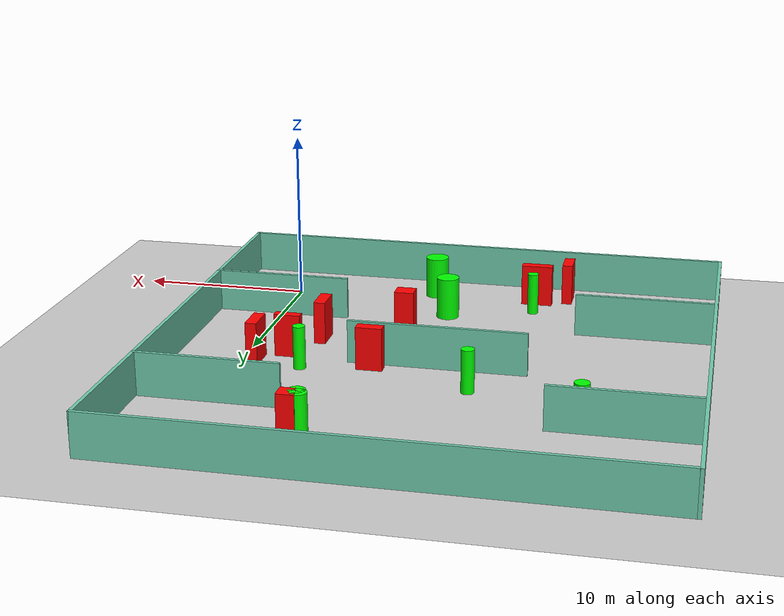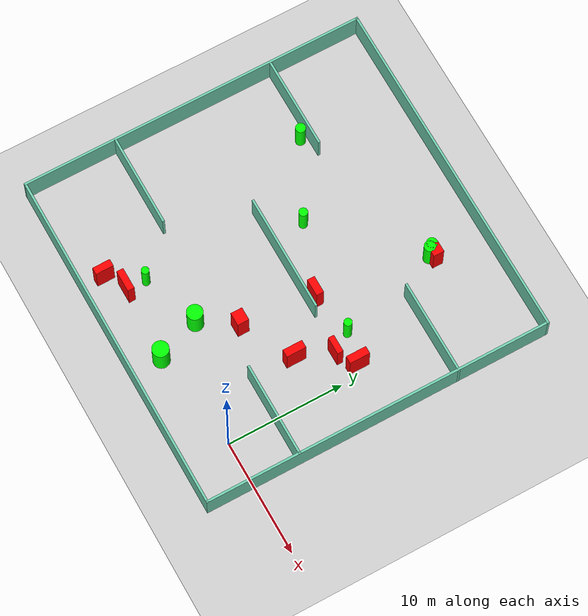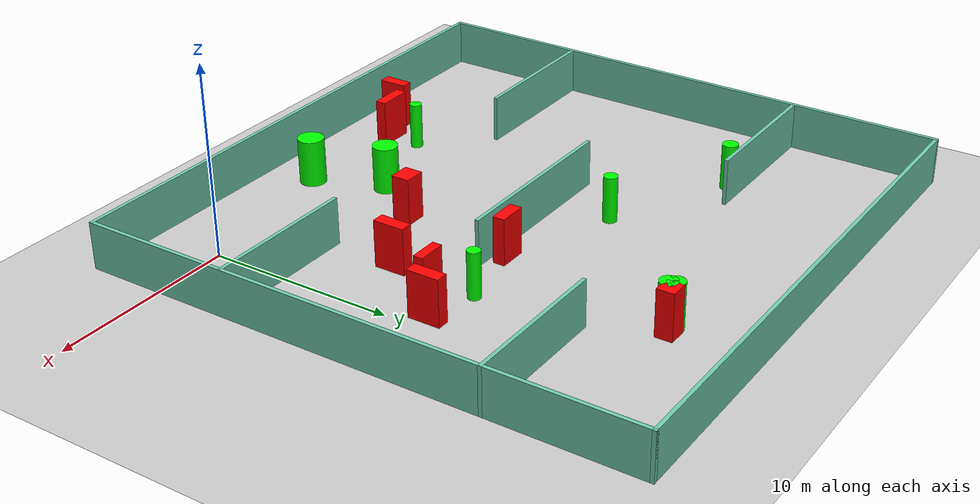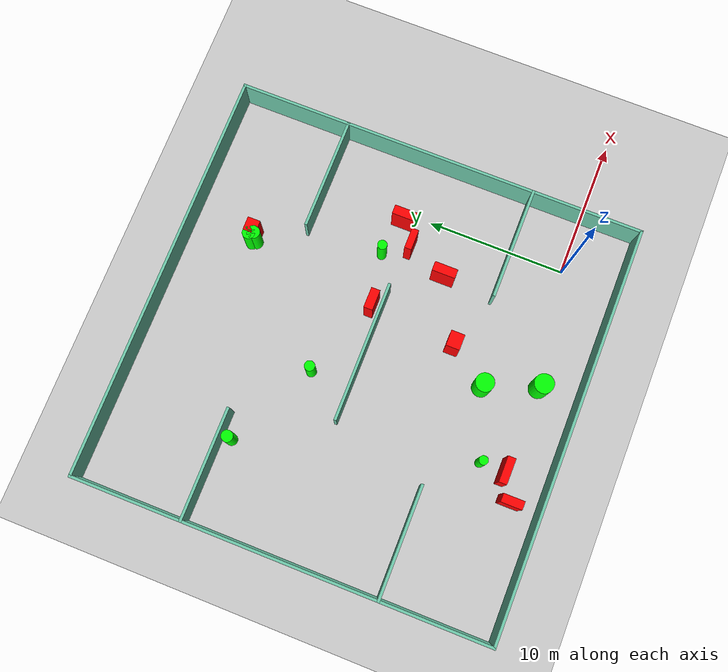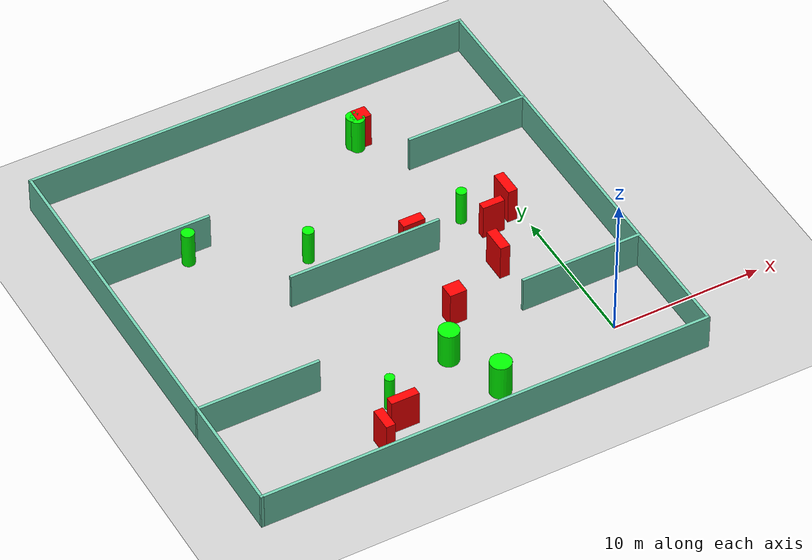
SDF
<sdf version="1.7">
 <world name="default">
  <light name="sun" type="directional">
   <pose>0 0 10 0 -0 0</pose>
   <diffuse>0.8 0.8 0.8 1</diffuse>
   <specular>0.2 0.2 0.2 1</specular>
   <attenuation>
    <range>1000</range>
    <constant>0.9</constant>
    <linear>0.01</linear>
    <quadratic>0.001</quadratic>
   </attenuation>
   <direction>-0.5 0.1 -0.9</direction>
   <spot><inner_angle>0</inner_angle><outer_angle>0</outer_angle><falloff>0</falloff></spot>
  </light>
  <model name="ground_plane">
   <static>1</static>
   <link name="link">
    <collision name="collision">
     <geometry><plane><normal>0 0 1</normal><size>100 100</size></plane></geometry>
     <surface>
      <contact><collide_bitmask>65535</collide_bitmask></contact>
      <friction><ode><mu>100</mu><mu2>50</mu2></ode></friction>
     </surface>
    </collision>
    <visual name="visual">
     <cast_shadows>0</cast_shadows>
     <geometry><plane><normal>0 0 1</normal><size>100 100</size></plane></geometry>
     <material>
      <script><uri>file://media/materials/scripts/gazebo.material</uri><name>Gazebo/Grey</name></script>
     </material>
    </visual>
   </link>
  </model>
  <gravity>0 0 -9.8</gravity>
  <magnetic_field>6e-06 2.3e-05 -4.2e-05</magnetic_field>
  <atmosphere type="adiabatic"/>
  <physics type="ode">
   <max_step_size>0.001</max_step_size>
   <real_time_factor>1</real_time_factor>
   <real_time_update_rate>1000</real_time_update_rate>
  </physics>
  <scene><ambient>0.4 0.4 0.4 1</ambient><background>0.7 0.7 0.7 1</background><shadows>1</shadows></scene>
  <spherical_coordinates>
   <surface_model>EARTH_WGS84</surface_model>
   <latitude_deg>0</latitude_deg>
   <longitude_deg>0</longitude_deg>
   <elevation>0</elevation>
   <heading_deg>0</heading_deg>
  </spherical_coordinates>
  <model name="my_base_walls">
   <link name="Wall_10">
    <collision name="Wall_10_Collision">
     <geometry><box><size>8.2 0.2 2.5</size></box></geometry>
     <pose>0 0 1.25 0 -0 0</pose>
    </collision>
    <visual name="Wall_10_Visual">
     <pose>0 0 1.25 0 -0 0</pose>
     <geometry><box><size>8.2 0.2 2.5</size></box></geometry>
     <material>
      <script><uri>file://media/materials/scripts/gazebo.material</uri><name>Gazebo/Grey</name></script>
      <ambient>0.435294 0.796078 0.67451 1</ambient>
     </material>
     <meta><layer>0</layer></meta>
    </visual>
    <pose>-11 -7 0 0 -0 0</pose>
   </link>
   <link name="Wall_12">
    <collision name="Wall_12_Collision">
     <geometry><box><size>8.2 0.2 2.5</size></box></geometry>
     <pose>0 0 1.25 0 -0 0</pose>
    </collision>
    <visual name="Wall_12_Visual">
     <pose>0 0 1.25 0 -0 0</pose>
     <geometry><box><size>8.2 0.2 2.5</size></box></geometry>
     <material>
      <script><uri>file://media/materials/scripts/gazebo.material</uri><name>Gazebo/Grey</name></script>
      <ambient>0.435294 0.796078 0.67451 1</ambient>
     </material>
     <meta><layer>0</layer></meta>
    </visual>
    <pose>-11 7 0 0 -0 0</pose>
   </link>
   <link name="Wall_14">
    <collision name="Wall_14_Collision">
     <geometry><box><size>8.2 0.2 2.5</size></box></geometry>
     <pose>0 0 1.25 0 -0 0</pose>
    </collision>
    <visual name="Wall_14_Visual">
     <pose>0 0 1.25 0 -0 0</pose>
     <geometry><box><size>8.2 0.2 2.5</size></box></geometry>
     <material>
      <script><uri>file://media/materials/scripts/gazebo.material</uri><name>Gazebo/Grey</name></script>
      <ambient>0.435294 0.796078 0.67451 1</ambient>
     </material>
     <meta><layer>0</layer></meta>
    </visual>
    <pose>11 7 0 0 -0 3.14159</pose>
   </link>
   <link name="Wall_16">
    <collision name="Wall_16_Collision">
     <geometry><box><size>10.2 0.2 2.5</size></box></geometry>
     <pose>0 0 1.25 0 -0 0</pose>
    </collision>
    <visual name="Wall_16_Visual">
     <pose>0 0 1.25 0 -0 0</pose>
     <geometry><box><size>10.2 0.2 2.5</size></box></geometry>
     <material>
      <script><uri>file://media/materials/scripts/gazebo.material</uri><name>Gazebo/Grey</name></script>
      <ambient>0.435294 0.796078 0.67451 1</ambient>
     </material>
     <meta><layer>0</layer></meta>
    </visual>
    <pose>0 0 0 0 -0 3.14159</pose>
   </link>
   <link name="Wall_2">
    <collision name="Wall_2_Collision">
     <geometry><box><size>30.2 0.2 2.5</size></box></geometry>
     <pose>0 0 1.25 0 -0 0</pose>
    </collision>
    <visual name="Wall_2_Visual">
     <pose>0 0 1.25 0 -0 0</pose>
     <geometry><box><size>30.2 0.2 2.5</size></box></geometry>
     <material>
      <script><uri>file://media/materials/scripts/gazebo.material</uri><name>Gazebo/Grey</name></script>
      <ambient>0.435294 0.796078 0.67451 1</ambient>
     </material>
     <meta><layer>0</layer></meta>
    </visual>
    <pose>0 -15 0 0 -0 3.14159</pose>
   </link>
   <link name="Wall_3">
    <collision name="Wall_3_Collision">
     <geometry><box><size>30.2 0.2 2.5</size></box></geometry>
     <pose>0 0 1.25 0 -0 0</pose>
    </collision>
    <visual name="Wall_3_Visual">
     <pose>0 0 1.25 0 -0 0</pose>
     <geometry><box><size>30.2 0.2 2.5</size></box></geometry>
     <material>
      <script><uri>file://media/materials/scripts/gazebo.material</uri><name>Gazebo/Grey</name></script>
      <ambient>0.435294 0.796078 0.67451 1</ambient>
     </material>
     <meta><layer>0</layer></meta>
    </visual>
    <pose>-15 0 0 0 -0 1.5708</pose>
   </link>
   <link name="Wall_4">
    <collision name="Wall_4_Collision">
     <geometry><box><size>30.2 0.2 2.5</size></box></geometry>
     <pose>0 0 1.25 0 -0 0</pose>
    </collision>
    <visual name="Wall_4_Visual">
     <pose>0 0 1.25 0 -0 0</pose>
     <geometry><box><size>30.2 0.2 2.5</size></box></geometry>
     <material>
      <script><uri>file://media/materials/scripts/gazebo.material</uri><name>Gazebo/Grey</name></script>
      <ambient>0.435294 0.796078 0.67451 1</ambient>
     </material>
     <meta><layer>0</layer></meta>
    </visual>
    <pose>0 15 0 0 -0 0</pose>
   </link>
   <link name="Wall_6">
    <collision name="Wall_6_Collision">
     <geometry><box><size>30.2 0.2 2.5</size></box></geometry>
     <pose>0 0 1.25 0 -0 0</pose>
    </collision>
    <visual name="Wall_6_Visual">
     <pose>0 0 1.25 0 -0 0</pose>
     <geometry><box><size>30.2 0.2 2.5</size></box></geometry>
     <material>
      <script><uri>file://media/materials/scripts/gazebo.material</uri><name>Gazebo/Grey</name></script>
      <ambient>0.435294 0.796078 0.67451 1</ambient>
     </material>
     <meta><layer>0</layer></meta>
    </visual>
    <pose>15 0 0 0 -0 1.5708</pose>
   </link>
   <link name="Wall_8">
    <collision name="Wall_8_Collision">
     <geometry><box><size>8.2 0.2 2.5</size></box></geometry>
     <pose>0 0 1.25 0 -0 0</pose>
    </collision>
    <visual name="Wall_8_Visual">
     <pose>0 0 1.25 0 -0 0</pose>
     <geometry><box><size>8.2 0.2 2.5</size></box></geometry>
     <material>
      <script><uri>file://media/materials/scripts/gazebo.material</uri><name>Gazebo/Grey</name></script>
      <ambient>0.435294 0.796078 0.67451 1</ambient>
     </material>
     <meta><layer>0</layer></meta>
    </visual>
    <pose>11 -7 0 0 -0 3.14159</pose>
   </link>
   <static>1</static>
   <pose>-11 11 0 0 -0 0</pose>
  </model>
  <model name="cylinder1">
   <static>1</static>
   <link name="link">
    <inertial>
     <mass>1</mass>
     <inertia><ixx>0.5</ixx><ixy>0</ixy><ixz>0</ixz><iyy>0.5</iyy><iyz>0</iyz><izz>1</izz></inertia>
    </inertial>
    <collision name="collision">
     <geometry><cylinder><radius>0.4744906262213804</radius><length>2.5</length></cylinder></geometry>
    </collision>
    <visual name="visual">
     <geometry><cylinder><radius>0.4744906262213804</radius><length>2.5</length></cylinder></geometry>
     <material>
      <ambient>0 1 0 1</ambient>
      <diffuse>0 1 0 1</diffuse>
      <specular>0.1 0.1 0.1 1</specular>
      <emissive>0 0 0 0</emissive>
     </material>
    </visual>
   </link>
   <pose>-5.939073608940134 21.207283273305126 1.25 0 0 0</pose>
  </model>
  <model name="cylinder2">
   <static>1</static>
   <link name="link">
    <inertial>
     <mass>1</mass>
     <inertia><ixx>0.5</ixx><ixy>0</ixy><ixz>0</ixz><iyy>0.5</iyy><iyz>0</iyz><izz>1</izz></inertia>
    </inertial>
    <collision name="collision">
     <geometry><cylinder><radius>0.3460966828207403</radius><length>2.5</length></cylinder></geometry>
    </collision>
    <visual name="visual">
     <geometry><cylinder><radius>0.3460966828207403</radius><length>2.5</length></cylinder></geometry>
     <material>
      <ambient>0 1 0 1</ambient>
      <diffuse>0 1 0 1</diffuse>
      <specular>0.1 0.1 0.1 1</specular>
      <emissive>0 0 0 0</emissive>
     </material>
    </visual>
   </link>
   <pose>-3.507474785795509 12.479169385448454 1.25 0 0 0</pose>
  </model>
  <model name="cylinder3">
   <static>1</static>
   <link name="link">
    <inertial>
     <mass>1</mass>
     <inertia><ixx>0.5</ixx><ixy>0</ixy><ixz>0</ixz><iyy>0.5</iyy><iyz>0</iyz><izz>1</izz></inertia>
    </inertial>
    <collision name="collision">
     <geometry><cylinder><radius>0.6720621996966054</radius><length>2.5</length></cylinder></geometry>
    </collision>
    <visual name="visual">
     <geometry><cylinder><radius>0.6720621996966054</radius><length>2.5</length></cylinder></geometry>
     <material>
      <ambient>0 1 0 1</ambient>
      <diffuse>0 1 0 1</diffuse>
      <specular>0.1 0.1 0.1 1</specular>
      <emissive>0 0 0 0</emissive>
     </material>
    </visual>
   </link>
   <pose>-9.98553467566095 2.498897330872069 1.25 0 0 0</pose>
  </model>
  <model name="cylinder4">
   <static>1</static>
   <link name="link">
    <inertial>
     <mass>1</mass>
     <inertia><ixx>0.5</ixx><ixy>0</ixy><ixz>0</ixz><iyy>0.5</iyy><iyz>0</iyz><izz>1</izz></inertia>
    </inertial>
    <collision name="collision">
     <geometry><cylinder><radius>0.3725260561895565</radius><length>2.5</length></cylinder></geometry>
    </collision>
    <visual name="visual">
     <geometry><cylinder><radius>0.3725260561895565</radius><length>2.5</length></cylinder></geometry>
     <material>
      <ambient>0 1 0 1</ambient>
      <diffuse>0 1 0 1</diffuse>
      <specular>0.1 0.1 0.1 1</specular>
      <emissive>0 0 0 0</emissive>
     </material>
    </visual>
   </link>
   <pose>-13.281459518818718 13.9735024224982 1.25 0 0 0</pose>
  </model>
  <model name="cylinder5">
   <static>1</static>
   <link name="link">
    <inertial>
     <mass>1</mass>
     <inertia><ixx>0.5</ixx><ixy>0</ixy><ixz>0</ixz><iyy>0.5</iyy><iyz>0</iyz><izz>1</izz></inertia>
    </inertial>
    <collision name="collision">
     <geometry><cylinder><radius>0.4604435248774539</radius><length>2.5</length></cylinder></geometry>
    </collision>
    <visual name="visual">
     <geometry><cylinder><radius>0.4604435248774539</radius><length>2.5</length></cylinder></geometry>
     <material>
      <ambient>0 1 0 1</ambient>
      <diffuse>0 1 0 1</diffuse>
      <specular>0.1 0.1 0.1 1</specular>
      <emissive>0 0 0 0</emissive>
     </material>
    </visual>
   </link>
   <pose>-6.10078737315002 21.488730929154897 1.25 0 0 0</pose>
  </model>
  <model name="cylinder6">
   <static>1</static>
   <link name="link">
    <inertial>
     <mass>1</mass>
     <inertia><ixx>0.5</ixx><ixy>0</ixy><ixz>0</ixz><iyy>0.5</iyy><iyz>0</iyz><izz>1</izz></inertia>
    </inertial>
    <collision name="collision">
     <geometry><cylinder><radius>0.4222232050062828</radius><length>2.5</length></cylinder></geometry>
    </collision>
    <visual name="visual">
     <geometry><cylinder><radius>0.4222232050062828</radius><length>2.5</length></cylinder></geometry>
     <material>
      <ambient>0 1 0 1</ambient>
      <diffuse>0 1 0 1</diffuse>
      <specular>0.1 0.1 0.1 1</specular>
      <emissive>0 0 0 0</emissive>
     </material>
    </visual>
   </link>
   <pose>-19.72747201859668 17.322666447963872 1.25 0 0 0</pose>
  </model>
  <model name="cylinder7">
   <static>1</static>
   <link name="link">
    <inertial>
     <mass>1</mass>
     <inertia><ixx>0.5</ixx><ixy>0</ixy><ixz>0</ixz><iyy>0.5</iyy><iyz>0</iyz><izz>1</izz></inertia>
    </inertial>
    <collision name="collision">
     <geometry><cylinder><radius>0.32588278201797866</radius><length>2.5</length></cylinder></geometry>
    </collision>
    <visual name="visual">
     <geometry><cylinder><radius>0.32588278201797866</radius><length>2.5</length></cylinder></geometry>
     <material>
      <ambient>0 1 0 1</ambient>
      <diffuse>0 1 0 1</diffuse>
      <specular>0.1 0.1 0.1 1</specular>
      <emissive>0 0 0 0</emissive>
     </material>
    </visual>
   </link>
   <pose>-14.950046387961027 0.7867892907428202 1.25 0 0 0</pose>
  </model>
  <model name="cylinder8">
   <static>1</static>
   <link name="link">
    <inertial>
     <mass>1</mass>
     <inertia><ixx>0.5</ixx><ixy>0</ixy><ixz>0</ixz><iyy>0.5</iyy><iyz>0</iyz><izz>1</izz></inertia>
    </inertial>
    <collision name="collision">
     <geometry><cylinder><radius>0.6984273916884473</radius><length>2.5</length></cylinder></geometry>
    </collision>
    <visual name="visual">
     <geometry><cylinder><radius>0.6984273916884473</radius><length>2.5</length></cylinder></geometry>
     <material>
      <ambient>0 1 0 1</ambient>
      <diffuse>0 1 0 1</diffuse>
      <specular>0.1 0.1 0.1 1</specular>
      <emissive>0 0 0 0</emissive>
     </material>
    </visual>
   </link>
   <pose>-8.594642379242181 -1.258012727808853 1.25 0 0 0</pose>
  </model>
  <model name="box1">
   <static>1</static>
   <link name="link">
    <inertial>
     <mass>1</mass>
     <inertia><ixx>0.083</ixx><ixy>0</ixy><ixz>0</ixz><iyy>0.083</iyy><iyz>0</iyz><izz>0.083</izz></inertia>
    </inertial>
    <collision name="collision">
     <geometry><box><size>1.5040425788543168 0.5100848483742837 2.5</size></box></geometry>
    </collision>
    <visual name="visual">
     <geometry><box><size>1.5040425788543168 0.5100848483742837 2.5</size></box></geometry>
     <material>
      <ambient>1 0 0 1</ambient>
      <diffuse>1 0 0 1</diffuse>
      <specular>0.1 0.1 0.1 1</specular>
      <emissive>0 0 0 0</emissive>
     </material>
    </visual>
    <sensor name="my_contact" type="contact">
     <contact><collision>box_collision</collision><topic>__default_topic__</topic></contact>
    </sensor>
   </link>
   <pose>-2.360439082118564 10.737976540657263 1.25 0 0 0</pose>
  </model>
  <model name="box2">
   <static>1</static>
   <link name="link">
    <inertial>
     <mass>1</mass>
     <inertia><ixx>0.083</ixx><ixy>0</ixy><ixz>0</ixz><iyy>0.083</iyy><iyz>0</iyz><izz>0.083</izz></inertia>
    </inertial>
    <collision name="collision">
     <geometry><box><size>1.1371237239685388 0.9961310465963609 2.5</size></box></geometry>
    </collision>
    <visual name="visual">
     <geometry><box><size>1.1371237239685388 0.9961310465963609 2.5</size></box></geometry>
     <material>
      <ambient>1 0 0 1</ambient>
      <diffuse>1 0 0 1</diffuse>
      <specular>0.1 0.1 0.1 1</specular>
      <emissive>0 0 0 0</emissive>
     </material>
    </visual>
    <sensor name="my_contact" type="contact">
     <contact><collision>box_collision</collision><topic>__default_topic__</topic></contact>
    </sensor>
   </link>
   <pose>-7.9823458095954685 5.3818038281412015 1.25 0 0 0</pose>
  </model>
  <model name="box3">
   <static>1</static>
   <link name="link">
    <inertial>
     <mass>1</mass>
     <inertia><ixx>0.083</ixx><ixy>0</ixy><ixz>0</ixz><iyy>0.083</iyy><iyz>0</iyz><izz>0.083</izz></inertia>
    </inertial>
    <collision name="collision">
     <geometry><box><size>0.6161786250753722 1.5295705475495918 2.5</size></box></geometry>
    </collision>
    <visual name="visual">
     <geometry><box><size>0.6161786250753722 1.5295705475495918 2.5</size></box></geometry>
     <material>
      <ambient>1 0 0 1</ambient>
      <diffuse>1 0 0 1</diffuse>
      <specular>0.1 0.1 0.1 1</specular>
      <emissive>0 0 0 0</emissive>
     </material>
    </visual>
    <sensor name="my_contact" type="contact">
     <contact><collision>box_collision</collision><topic>__default_topic__</topic></contact>
    </sensor>
   </link>
   <pose>-16.79791768620074 -1.9497215120189155 1.25 0 0 0</pose>
  </model>
  <model name="box4">
   <static>1</static>
   <link name="link">
    <inertial>
     <mass>1</mass>
     <inertia><ixx>0.083</ixx><ixy>0</ixy><ixz>0</ixz><iyy>0.083</iyy><iyz>0</iyz><izz>0.083</izz></inertia>
    </inertial>
    <collision name="collision">
     <geometry><box><size>1.8672343664405047 0.5763339071932116 2.5</size></box></geometry>
    </collision>
    <visual name="visual">
     <geometry><box><size>1.8672343664405047 0.5763339071932116 2.5</size></box></geometry>
     <material>
      <ambient>1 0 0 1</ambient>
      <diffuse>1 0 0 1</diffuse>
      <specular>0.1 0.1 0.1 1</specular>
      <emissive>0 0 0 0</emissive>
     </material>
    </visual>
    <sensor name="my_contact" type="contact">
     <contact><collision>box_collision</collision><topic>__default_topic__</topic></contact>
    </sensor>
   </link>
   <pose>-14.987966984584215 -0.918924847261509 1.25 0 0 0</pose>
  </model>
  <model name="box5">
   <static>1</static>
   <link name="link">
    <inertial>
     <mass>1</mass>
     <inertia><ixx>0.083</ixx><ixy>0</ixy><ixz>0</ixz><iyy>0.083</iyy><iyz>0</iyz><izz>0.083</izz></inertia>
    </inertial>
    <collision name="collision">
     <geometry><box><size>0.9828378930549837 0.9204725490914022 2.5</size></box></geometry>
    </collision>
    <visual name="visual">
     <geometry><box><size>0.9828378930549837 0.9204725490914022 2.5</size></box></geometry>
     <material>
      <ambient>1 0 0 1</ambient>
      <diffuse>1 0 0 1</diffuse>
      <specular>0.1 0.1 0.1 1</specular>
      <emissive>0 0 0 0</emissive>
     </material>
    </visual>
    <sensor name="my_contact" type="contact">
     <contact><collision>box_collision</collision><topic>__default_topic__</topic></contact>
    </sensor>
   </link>
   <pose>-5.531694465762508 21.502144860384885 1.25 0 0 0</pose>
  </model>
  <model name="box6">
   <static>1</static>
   <link name="link">
    <inertial>
     <mass>1</mass>
     <inertia><ixx>0.083</ixx><ixy>0</ixy><ixz>0</ixz><iyy>0.083</iyy><iyz>0</iyz><izz>0.083</izz></inertia>
    </inertial>
    <collision name="collision">
     <geometry><box><size>1.502999935717298 0.6442076430696623 2.5</size></box></geometry>
    </collision>
    <visual name="visual">
     <geometry><box><size>1.502999935717298 0.6442076430696623 2.5</size></box></geometry>
     <material>
      <ambient>1 0 0 1</ambient>
      <diffuse>1 0 0 1</diffuse>
      <specular>0.1 0.1 0.1 1</specular>
      <emissive>0 0 0 0</emissive>
     </material>
    </visual>
    <sensor name="my_contact" type="contact">
     <contact><collision>box_collision</collision><topic>__default_topic__</topic></contact>
    </sensor>
   </link>
   <pose>-7.364122815782249 11.750963324706776 1.25 0 0 0</pose>
  </model>
  <model name="box7">
   <static>1</static>
   <link name="link">
    <inertial>
     <mass>1</mass>
     <inertia><ixx>0.083</ixx><ixy>0</ixy><ixz>0</ixz><iyy>0.083</iyy><iyz>0</iyz><izz>0.083</izz></inertia>
    </inertial>
    <collision name="collision">
     <geometry><box><size>0.6676741349836028 1.6946946739846385 2.5</size></box></geometry>
    </collision>
    <visual name="visual">
     <geometry><box><size>0.6676741349836028 1.6946946739846385 2.5</size></box></geometry>
     <material>
      <ambient>1 0 0 1</ambient>
      <diffuse>1 0 0 1</diffuse>
      <specular>0.1 0.1 0.1 1</specular>
      <emissive>0 0 0 0</emissive>
     </material>
    </visual>
    <sensor name="my_contact" type="contact">
     <contact><collision>box_collision</collision><topic>__default_topic__</topic></contact>
    </sensor>
   </link>
   <pose>-3.60229726806638 7.786032992419194 1.25 0 0 0</pose>
  </model>
  <model name="box8">
   <static>1</static>
   <link name="link">
    <inertial>
     <mass>1</mass>
     <inertia><ixx>0.083</ixx><ixy>0</ixy><ixz>0</ixz><iyy>0.083</iyy><iyz>0</iyz><izz>0.083</izz></inertia>
    </inertial>
    <collision name="collision">
     <geometry><box><size>0.6541926305366873 1.7407425169028645 2.5</size></box></geometry>
    </collision>
    <visual name="visual">
     <geometry><box><size>0.6541926305366873 1.7407425169028645 2.5</size></box></geometry>
     <material>
      <ambient>1 0 0 1</ambient>
      <diffuse>1 0 0 1</diffuse>
      <specular>0.1 0.1 0.1 1</specular>
      <emissive>0 0 0 0</emissive>
     </material>
    </visual>
    <sensor name="my_contact" type="contact">
     <contact><collision>box_collision</collision><topic>__default_topic__</topic></contact>
    </sensor>
   </link>
   <pose>-0.7728286445957941 11.817614085596762 1.25 0 0 0</pose>
  </model>
 </world>
</sdf>
